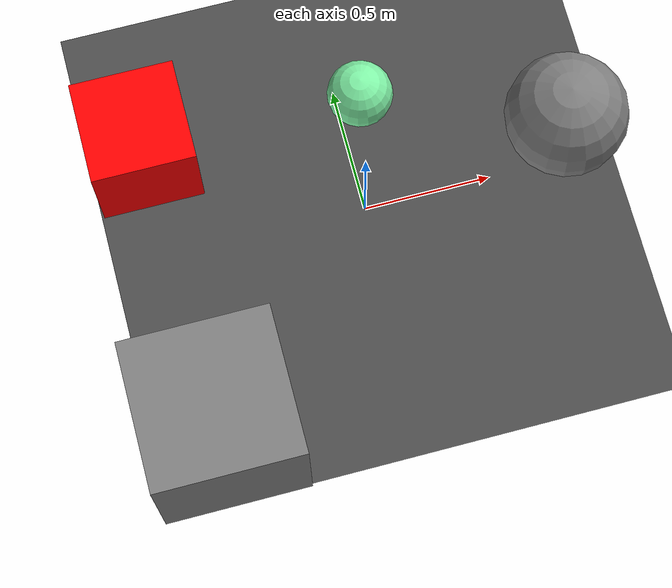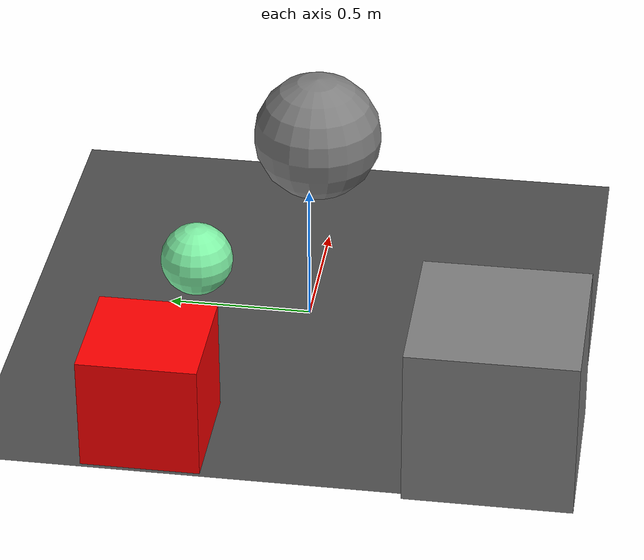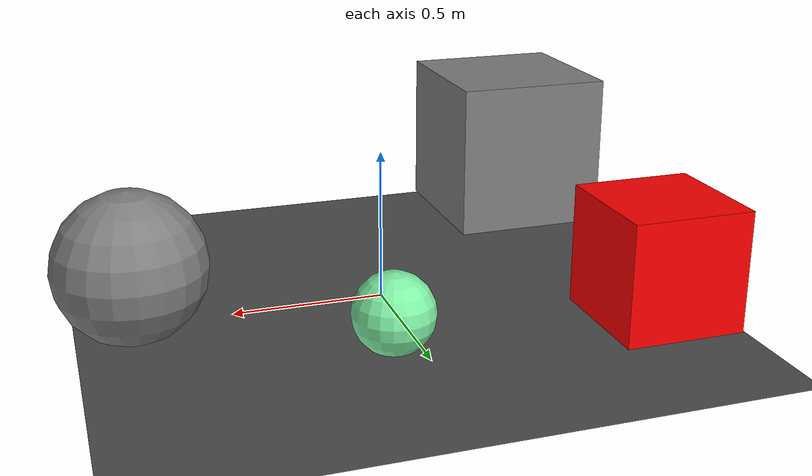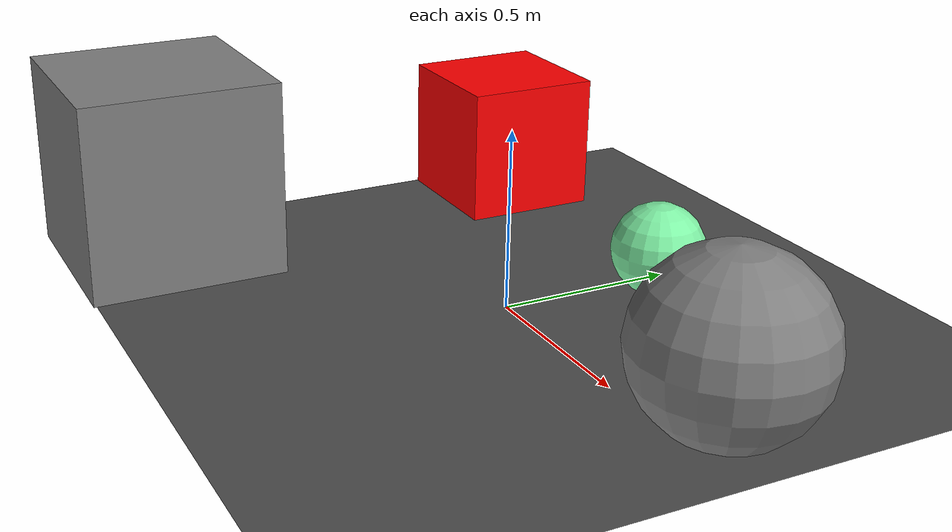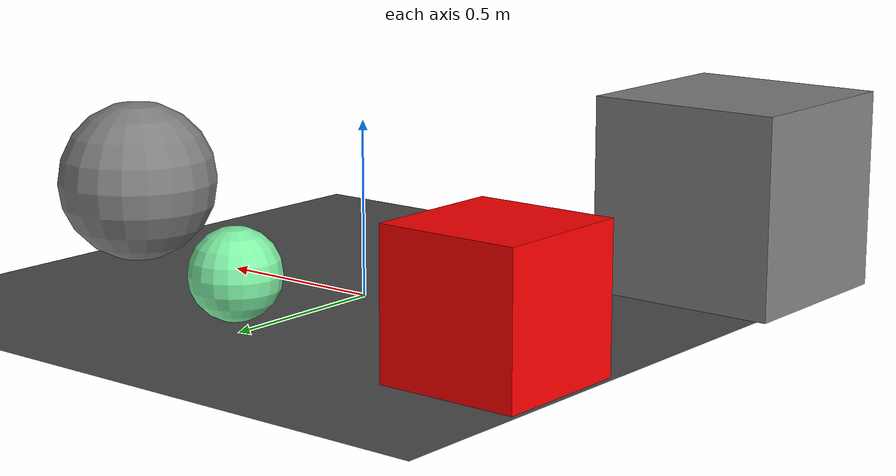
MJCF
<mujoco>
   <asset>
      <texture name="builtin_checker" builtin="checker" type="2d" rgb1="1 1 0" rgb2="0 0 1" width="200" height="200"/>
      <texture name="builtin_gradient" builtin="gradient" rgb1="0 .9 .3" rgb2="1 1 1" width="200" height="200"/>
      <texture name="builtin_flat" builtin="flat" rgb1="1 0 0" rgb2="1 0 0"  width="200" height="200"/>

      <material name="checker_mat" reflectance="0.9" texrepeat="3 3" texture="builtin_checker" texuniform="false" />
      <material name="gradient_mat" reflectance="1" texrepeat="1 1" texture="builtin_gradient" texuniform="true"/>
      <material name="flat_mat" reflectance="1" texrepeat="1 1" texture="builtin_flat" texuniform="true"/>
   </asset>

   <worldbody>
      <light diffuse=".9 .9 .9" pos="0 0 3" dir="0 0 -1"/>
     <geom type="plane" size="1 1 0.1" rgba="0.3 0.3 0.3 1"/>
<body pos="-0.75 -0.73 0.28">
<joint type="free"/>
 <geom type="box" size="0.28 0.28 0.28" material="checker_mat" />
</body>
<body pos="0.82 0.09 0.24">
<joint type="free"/>
 <geom type="sphere" size="0.24 0.24 0.24" material="checker_mat" />
</body>
<body pos="-0.79 0.42 0.2">
<joint type="free"/>
 <geom type="box" size="0.2 0.2 0.2" material="flat_mat" />
</body>
<body pos="0.09 0.42 0.13">
<joint type="free"/>
 <geom type="sphere" size="0.13 0.13 0.13" material="gradient_mat" />
</body><camera euler="60 0 180" fovy="60" name="camera_a" pos="0 -1.5 1"></camera>   </worldbody>
</mujoco>
